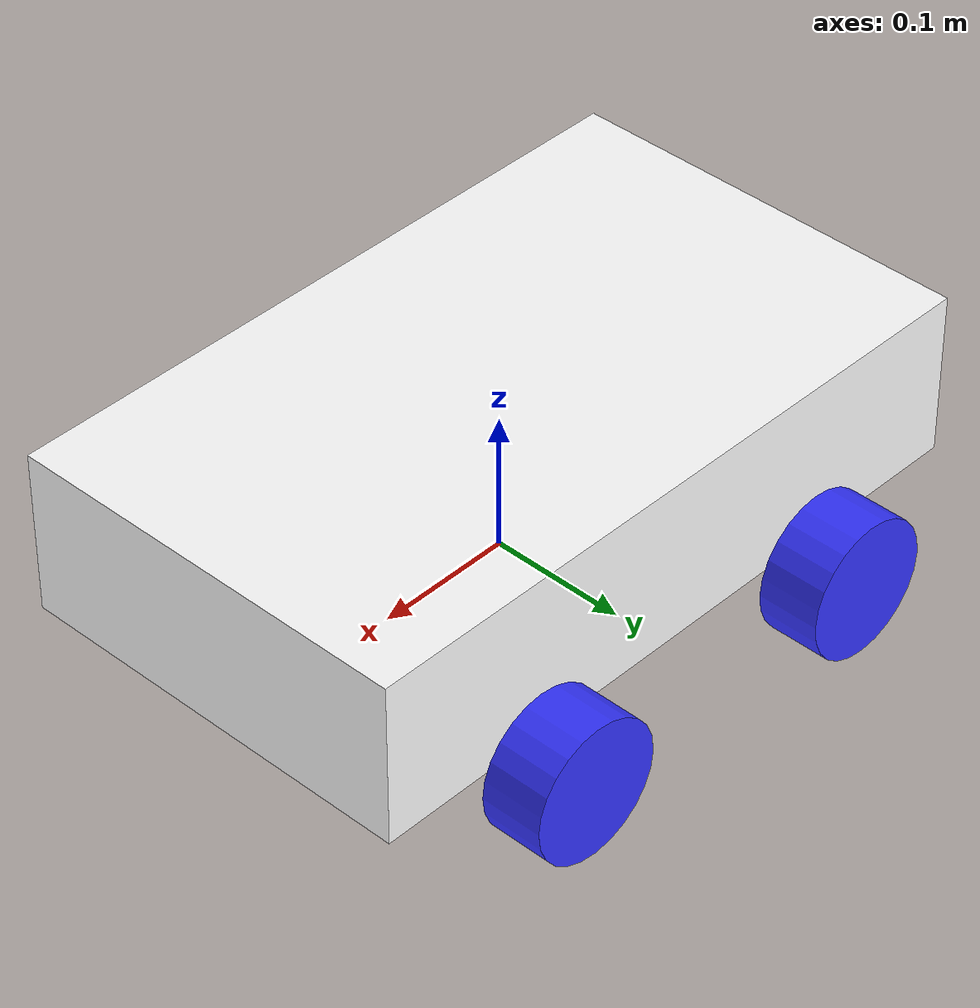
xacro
<?xml version="1.0"?>
<robot xmlns:xacro="http://www.ros.org/wiki/xacro">

    <xacro:include filename="inertial_macros.xacro"/>

    <material name="white">
        <color rgba="1 1 1 1" />
    </material>
    <material name="orange">
        <color rgba="1 0.3 0.1 1" />
    </material>
    <material name="blue">
        <color rgba="0.2 0.2 1 1" />
    </material>
    <material name="black">
        <color rgba="0 0 0 1" />
    </material>

 <!-- BASE LINK -->

 <link name="base_link">

 </link>

 <!-- BASE_FOOTPRINT LINK -->

 <joint name="base_footprint_joint" type="fixed">
    <parent link="base_link"/>
    <child link="base_footprint"/>
    <origin xyz="0 0 0" rpy="0 0 0"/> <!-- Adjust as needed -->
</joint>

<link name="base_footprint">
    <!-- Link properties -->
</link>
    <!-- Chassis Link-->
    <joint name="chassis_joint" type="fixed">
        <parent link="base_link" />
        <child link="chassis" />
        <origin xyz="-0.25 0.0 0.0" rpy="0.0 0.0 0.0" />

    </joint>

    <link name="chassis">
        <visual>
            <origin xyz="0.25 0 0.075"/>
            <geometry>
                <box size="0.5 0.3 0.12"/>
            </geometry>
            <material name="white"/>
        </visual>
        <collision>
            <origin xyz="0.25 0 0.075"/>
            <geometry>
                <box size="0.5 0.3 0.12"/>
            </geometry>
        </collision>
        <xacro:inertial_box mass="0.5" x="0.3" y="0.3" z="0.15">
            <origin xyz="0.15 0 0.075" rpy="0 0 0"/>
        </xacro:inertial_box>
    </link>

      <!-- LEFT WHEEL 2 LINK -->

      <joint name="left_wheel_joint_2" type="continuous">
        <parent link="base_link" />
        <child link="left_wheel_2" />
        <origin xyz="-0.125 0.175 0" rpy="-${pi/2} 0 0" />
        <axis xyz="0 0 1"/>
    </joint>

    <link name="left_wheel_2">
        <visual>
            <geometry>
                <cylinder radius="0.05" length="0.045"/>
            </geometry>
            <material name="blue"/>
        </visual>
        <collision>
            <geometry>
                <cylinder radius="0.05" length="0.045"/>
            </geometry>
        </collision>
        <xacro:inertial_cylinder mass="0.1" length="0.045" radius="0.05">
            <origin xyz="0 0 0" rpy="0 0 0"/>
        </xacro:inertial_cylinder>
    </link>

    <!-- LEFT WHEEL 1 LINK -->

    <joint name="left_wheel_joint_1" type="continuous">
        <parent link="base_link" />
        <child link="left_wheel_1" />
        <origin xyz="0.125 0.175 0" rpy="-${pi/2} 0 0" />
        <axis xyz="0 0 1"/>
    </joint>

    <link name="left_wheel_1">
        <visual>
            <geometry>
                <cylinder radius="0.05" length="0.045"/>
            </geometry>
            <material name="blue"/>
        </visual>
        <collision>
            <geometry>
                <cylinder radius="0.05" length="0.045"/>
            </geometry>
        </collision>
        <xacro:inertial_cylinder mass="0.1" length="0.045" radius="0.05">
            <origin xyz="0 0 0" rpy="0 0 0"/>
        </xacro:inertial_cylinder>
    </link>

    <!-- RIGHT WHEEL 2 LINK -->

    <joint name="right_wheel_joint_2" type="continuous">
        <parent link="base_link" />
        <child link="right_wheel_2" />
        <origin xyz="-0.125 -0.175 0" rpy="${-pi/2} 0 0" />
        <axis xyz="0 0 1"/>
    </joint>
    <link name="right_wheel_2">
        <visual>
            <geometry>
                <cylinder radius="0.05" length="0.045"/>
            </geometry>
            <material name="blue"/>
        </visual>
        <collision>
            <geometry>
                <cylinder radius="0.05" length="0.045"/>
            </geometry>
        </collision>
        <xacro:inertial_cylinder mass="0.1" length="0.045" radius="0.05">
            <origin xyz="0 0 0" rpy="0 0 0"/>
        </xacro:inertial_cylinder>
    </link>

      <!-- RIGHT WHEEL 1 LINK -->

      <joint name="right_wheel_joint_1" type="continuous">
        <parent link="base_link" />
        <child link="right_wheel_1" />
        <origin xyz="0.125 -0.175 0" rpy="${-pi/2} 0 0" />
        <axis xyz="0 0 1"/>
    </joint>
    <link name="right_wheel_1">
        <visual>
            <geometry>
                <cylinder radius="0.05" length="0.045"/>
            </geometry>
            <material name="blue"/>
        </visual>
        <collision>
            <geometry>
                <cylinder radius="0.05" length="0.045"/>
            </geometry>
        </collision>
        <xacro:inertial_cylinder mass="0.1" length="0.045" radius="0.05">
            <origin xyz="0 0 0" rpy="0 0 0"/>
        </xacro:inertial_cylinder>
    </link>

</robot>
